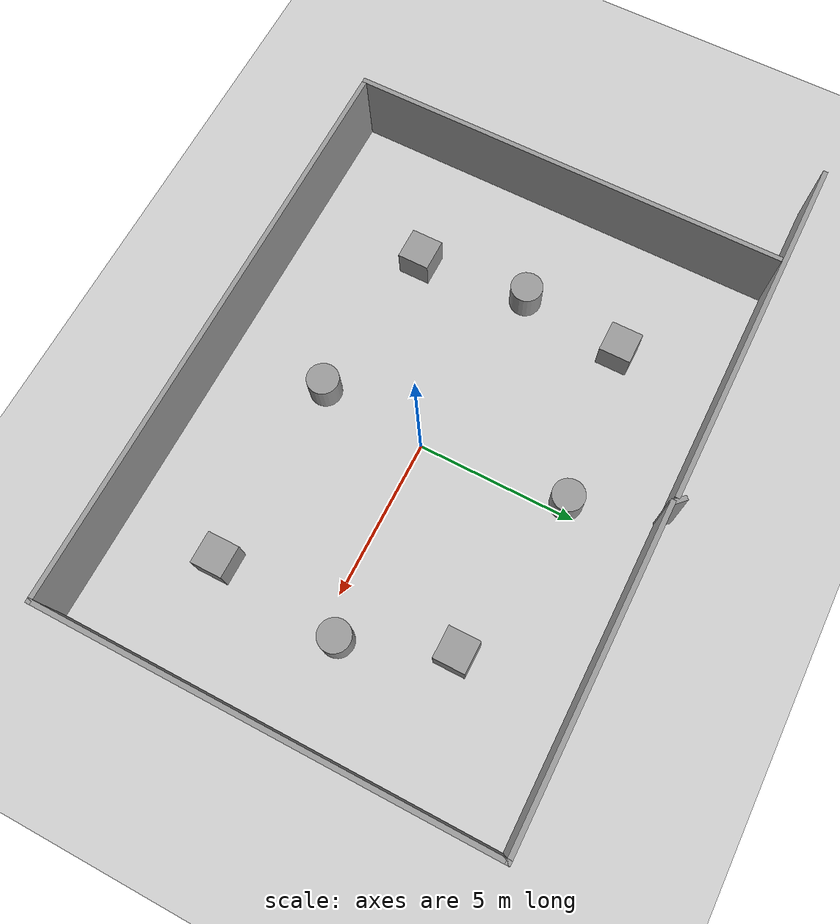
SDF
<sdf version="1.7">
 <world name="default">
  <light name="sun" type="directional">
   <pose>0 0 10 0 -0 0</pose>
   <diffuse>0.8 0.8 0.8 1</diffuse>
   <specular>0.2 0.2 0.2 1</specular>
   <attenuation>
    <range>1000</range>
    <constant>0.9</constant>
    <linear>0.01</linear>
    <quadratic>0.001</quadratic>
   </attenuation>
   <direction>-0.5 0.1 -0.9</direction>
   <spot><inner_angle>0</inner_angle><outer_angle>0</outer_angle><falloff>0</falloff></spot>
  </light>
  <model name="ground_plane">
   <static>1</static>
   <link name="link">
    <collision name="collision">
     <geometry><plane><normal>0 0 1</normal><size>100 100</size></plane></geometry>
     <surface>
      <contact><collide_bitmask>65535</collide_bitmask></contact>
      <friction><ode><mu>100</mu><mu2>50</mu2></ode></friction>
     </surface>
    </collision>
    <visual name="visual">
     <cast_shadows>0</cast_shadows>
     <geometry><plane><normal>0 0 1</normal><size>100 100</size></plane></geometry>
     <material>
      <script><uri>file://media/materials/scripts/gazebo.material</uri><name>Gazebo/Grey</name></script>
     </material>
    </visual>
   </link>
  </model>
  <gravity>0 0 -9.8</gravity>
  <magnetic_field>6e-06 2.3e-05 -4.2e-05</magnetic_field>
  <atmosphere type="adiabatic"/>
  <physics type="ode">
   <max_step_size>0.001</max_step_size>
   <real_time_factor>1</real_time_factor>
   <real_time_update_rate>1000</real_time_update_rate>
  </physics>
  <scene><ambient>0.4 0.4 0.4 1</ambient><background>0.7 0.7 0.7 1</background><shadows>1</shadows></scene>
  <spherical_coordinates>
   <surface_model>EARTH_WGS84</surface_model>
   <latitude_deg>0</latitude_deg>
   <longitude_deg>0</longitude_deg>
   <elevation>0</elevation>
   <heading_deg>0</heading_deg>
  </spherical_coordinates>
  <model name="Untitled">
   <pose>-1.71827 0.410127 0 0 -0 0</pose>
   <link name="Wall_10">
    <collision name="Wall_10_Collision">
     <geometry><box><size>10.25 0.15 2.5</size></box></geometry>
     <pose>0 0 1.25 0 -0 0</pose>
    </collision>
    <visual name="Wall_10_Visual">
     <pose>0 0 1.25 0 -0 0</pose>
     <geometry><box><size>10.25 0.15 2.5</size></box></geometry>
     <material>
      <script><uri>file://media/materials/scripts/gazebo.material</uri><name>Gazebo/Grey</name></script>
      <ambient>1 1 1 1</ambient>
     </material>
     <meta><layer>0</layer></meta>
    </visual>
    <pose>5.7949 6.83572 0 0 -0 3.14159</pose>
   </link>
   <link name="Wall_11">
    <collision name="Wall_11_Collision">
     <geometry><box><size>0.5 0.15 2.5</size></box></geometry>
     <pose>0 0 1.25 0 -0 0</pose>
    </collision>
    <visual name="Wall_11_Visual">
     <pose>0 0 1.25 0 -0 0</pose>
     <geometry><box><size>0.5 0.15 2.5</size></box></geometry>
     <material>
      <script><uri>file://media/materials/scripts/gazebo.material</uri><name>Gazebo/Grey</name></script>
      <ambient>1 1 1 1</ambient>
     </material>
     <meta><layer>0</layer></meta>
    </visual>
    <pose>0.621154 6.95947 0 0 -0 2.35619</pose>
   </link>
   <link name="Wall_4">
    <collision name="Wall_4_Collision">
     <geometry><box><size>11.5 0.15 2.5</size></box></geometry>
     <pose>0 0 1.25 0 -0 0</pose>
    </collision>
    <visual name="Wall_4_Visual">
     <pose>0 0 1.25 0 -0 0</pose>
     <geometry><box><size>11.5 0.15 2.5</size></box></geometry>
     <material>
      <script><uri>file://media/materials/scripts/gazebo.material</uri><name>Gazebo/Grey</name></script>
      <ambient>1 1 1 1</ambient>
     </material>
     <meta><layer>0</layer></meta>
    </visual>
    <pose>-5.1699 6.89755 0 0 -0 3.14159</pose>
   </link>
   <link name="Wall_6">
    <collision name="Wall_6_Collision">
     <geometry><box><size>14 0.15 2.5</size></box></geometry>
     <pose>0 0 1.25 0 -0 0</pose>
    </collision>
    <visual name="Wall_6_Visual">
     <pose>0 0 1.25 0 -0 0</pose>
     <geometry><box><size>14 0.15 2.5</size></box></geometry>
     <material>
      <script><uri>file://media/materials/scripts/gazebo.material</uri><name>Gazebo/Grey</name></script>
      <ambient>1 1 1 1</ambient>
     </material>
     <meta><layer>0</layer></meta>
    </visual>
    <pose>-7.5051 -0.189276 0 0 -0 -1.5708</pose>
   </link>
   <link name="Wall_7">
    <collision name="Wall_7_Collision">
     <geometry><box><size>18.5 0.15 2.5</size></box></geometry>
     <pose>0 0 1.25 0 -0 0</pose>
    </collision>
    <visual name="Wall_7_Visual">
     <pose>0 0 1.25 0 -0 0</pose>
     <geometry><box><size>18.5 0.15 2.5</size></box></geometry>
     <material>
      <script><uri>file://media/materials/scripts/gazebo.material</uri><name>Gazebo/Grey</name></script>
      <ambient>1 1 1 1</ambient>
     </material>
     <meta><layer>0</layer></meta>
    </visual>
    <pose>1.6699 -7.11428 0 0 -0 0</pose>
   </link>
   <link name="Wall_8">
    <collision name="Wall_8_Collision">
     <geometry><box><size>14 0.15 2.5</size></box></geometry>
     <pose>0 0 1.25 0 -0 0</pose>
    </collision>
    <visual name="Wall_8_Visual">
     <pose>0 0 1.25 0 -0 0</pose>
     <geometry><box><size>14 0.15 2.5</size></box></geometry>
     <material>
      <script><uri>file://media/materials/scripts/gazebo.material</uri><name>Gazebo/Grey</name></script>
      <ambient>1 1 1 1</ambient>
     </material>
     <meta><layer>0</layer></meta>
    </visual>
    <pose>10.8449 -0.189276 0 0 -0 1.5708</pose>
   </link>
   <link name="Wall_9">
    <collision name="Wall_9_Collision">
     <geometry><box><size>0.25 0.15 2.5</size></box></geometry>
     <pose>0 0 1.25 0 -0 0</pose>
    </collision>
    <visual name="Wall_9_Visual">
     <pose>0 0 1.25 0 -0 0</pose>
     <geometry><box><size>0.25 0.15 2.5</size></box></geometry>
     <material>
      <script><uri>file://media/materials/scripts/gazebo.material</uri><name>Gazebo/Grey</name></script>
      <ambient>1 1 1 1</ambient>
     </material>
     <meta><layer>0</layer></meta>
    </visual>
    <pose>10.8449 6.78572 0 0 -0 1.5708</pose>
   </link>
   <static>1</static>
  </model>
  <model name="unit_box">
   <pose>-5.38974 4.00115 0.499995 0 1e-05 0</pose>
   <link name="link">
    <inertial>
     <mass>1</mass>
     <inertia>
      <ixx>0.166667</ixx>
      <ixy>0</ixy>
      <ixz>0</ixz>
      <iyy>0.166667</iyy>
      <iyz>0</iyz>
      <izz>0.166667</izz>
     </inertia>
    </inertial>
    <collision name="collision"><geometry><box><size>1 1 1</size></box></geometry></collision>
    <visual name="visual">
     <geometry><box><size>1 1 1</size></box></geometry>
     <material>
      <script><name>Gazebo/Grey</name><uri>file://media/materials/scripts/gazebo.material</uri></script>
     </material>
    </visual>
   </link>
  </model>
  <model name="unit_box_0">
   <pose>4.99137 3.74226 0.499995 -1e-05 -0 -0</pose>
   <link name="link">
    <inertial>
     <mass>1</mass>
     <inertia>
      <ixx>0.166667</ixx>
      <ixy>0</ixy>
      <ixz>0</ixz>
      <iyy>0.166667</iyy>
      <iyz>0</iyz>
      <izz>0.166667</izz>
     </inertia>
    </inertial>
    <collision name="collision"><geometry><box><size>1 1 1</size></box></geometry></collision>
    <visual name="visual">
     <geometry><box><size>1 1 1</size></box></geometry>
     <material>
      <script><name>Gazebo/Grey</name><uri>file://media/materials/scripts/gazebo.material</uri></script>
     </material>
    </visual>
   </link>
  </model>
  <model name="unit_box_1">
   <pose>-5.4482 -2.84367 0.499995 0 1e-05 0</pose>
   <link name="link">
    <inertial>
     <mass>1</mass>
     <inertia>
      <ixx>0.166667</ixx>
      <ixy>0</ixy>
      <ixz>0</ixz>
      <iyy>0.166667</iyy>
      <iyz>0</iyz>
      <izz>0.166667</izz>
     </inertia>
    </inertial>
    <collision name="collision"><geometry><box><size>1 1 1</size></box></geometry></collision>
    <visual name="visual">
     <geometry><box><size>1 1 1</size></box></geometry>
     <material>
      <script><name>Gazebo/Grey</name><uri>file://media/materials/scripts/gazebo.material</uri></script>
     </material>
    </visual>
   </link>
  </model>
  <model name="unit_box_2">
   <pose>5.72171 -3.49436 0.499995 -1e-05 -0 -0</pose>
   <link name="link">
    <inertial>
     <mass>1</mass>
     <inertia>
      <ixx>0.166667</ixx>
      <ixy>0</ixy>
      <ixz>0</ixz>
      <iyy>0.166667</iyy>
      <iyz>0</iyz>
      <izz>0.166667</izz>
     </inertia>
    </inertial>
    <collision name="collision"><geometry><box><size>1 1 1</size></box></geometry></collision>
    <visual name="visual">
     <geometry><box><size>1 1 1</size></box></geometry>
     <material>
      <script><name>Gazebo/Grey</name><uri>file://media/materials/scripts/gazebo.material</uri></script>
     </material>
    </visual>
   </link>
  </model>
  <model name="unit_cylinder">
   <pose>-0.348803 4.61411 0.499992 -3e-06 -4e-06 -0</pose>
   <link name="link">
    <inertial>
     <mass>1</mass>
     <inertia><ixx>0.145833</ixx><ixy>0</ixy><ixz>0</ixz><iyy>0.145833</iyy><iyz>0</iyz><izz>0.125</izz></inertia>
    </inertial>
    <collision name="collision">
     <geometry><cylinder><radius>0.5</radius><length>1</length></cylinder></geometry>
    </collision>
    <visual name="visual">
     <geometry><cylinder><radius>0.5</radius><length>1</length></cylinder></geometry>
     <material>
      <script><name>Gazebo/Grey</name><uri>file://media/materials/scripts/gazebo.material</uri></script>
     </material>
    </visual>
   </link>
  </model>
  <model name="unit_cylinder_0">
   <pose>-0.282791 -3.40922 0.499993 -3e-06 -3e-06 0</pose>
   <link name="link">
    <inertial>
     <mass>1</mass>
     <inertia><ixx>0.145833</ixx><ixy>0</ixy><ixz>0</ixz><iyy>0.145833</iyy><iyz>0</iyz><izz>0.125</izz></inertia>
    </inertial>
    <collision name="collision">
     <geometry><cylinder><radius>0.5</radius><length>1</length></cylinder></geometry>
    </collision>
    <visual name="visual">
     <geometry><cylinder><radius>0.5</radius><length>1</length></cylinder></geometry>
     <material>
      <script><name>Gazebo/Grey</name><uri>file://media/materials/scripts/gazebo.material</uri></script>
     </material>
    </visual>
   </link>
  </model>
  <model name="unit_cylinder_1">
   <pose>6.16948 0.588255 0.499997 3e-06 4e-06 -0</pose>
   <link name="link">
    <inertial>
     <mass>1</mass>
     <inertia><ixx>0.145833</ixx><ixy>0</ixy><ixz>0</ixz><iyy>0.145833</iyy><iyz>0</iyz><izz>0.125</izz></inertia>
    </inertial>
    <collision name="collision">
     <geometry><cylinder><radius>0.5</radius><length>1</length></cylinder></geometry>
    </collision>
    <visual name="visual">
     <geometry><cylinder><radius>0.5</radius><length>1</length></cylinder></geometry>
     <material>
      <script><name>Gazebo/Grey</name><uri>file://media/materials/scripts/gazebo.material</uri></script>
     </material>
    </visual>
   </link>
  </model>
  <model name="unit_cylinder_2">
   <pose>-5.76757 0.676932 0.499993 -3e-06 -4e-06 -0</pose>
   <link name="link">
    <inertial>
     <mass>1</mass>
     <inertia><ixx>0.145833</ixx><ixy>0</ixy><ixz>0</ixz><iyy>0.145833</iyy><iyz>0</iyz><izz>0.125</izz></inertia>
    </inertial>
    <collision name="collision">
     <geometry><cylinder><radius>0.5</radius><length>1</length></cylinder></geometry>
    </collision>
    <visual name="visual">
     <geometry><cylinder><radius>0.5</radius><length>1</length></cylinder></geometry>
     <material>
      <script><name>Gazebo/Grey</name><uri>file://media/materials/scripts/gazebo.material</uri></script>
     </material>
    </visual>
   </link>
  </model>
 </world>
</sdf>
